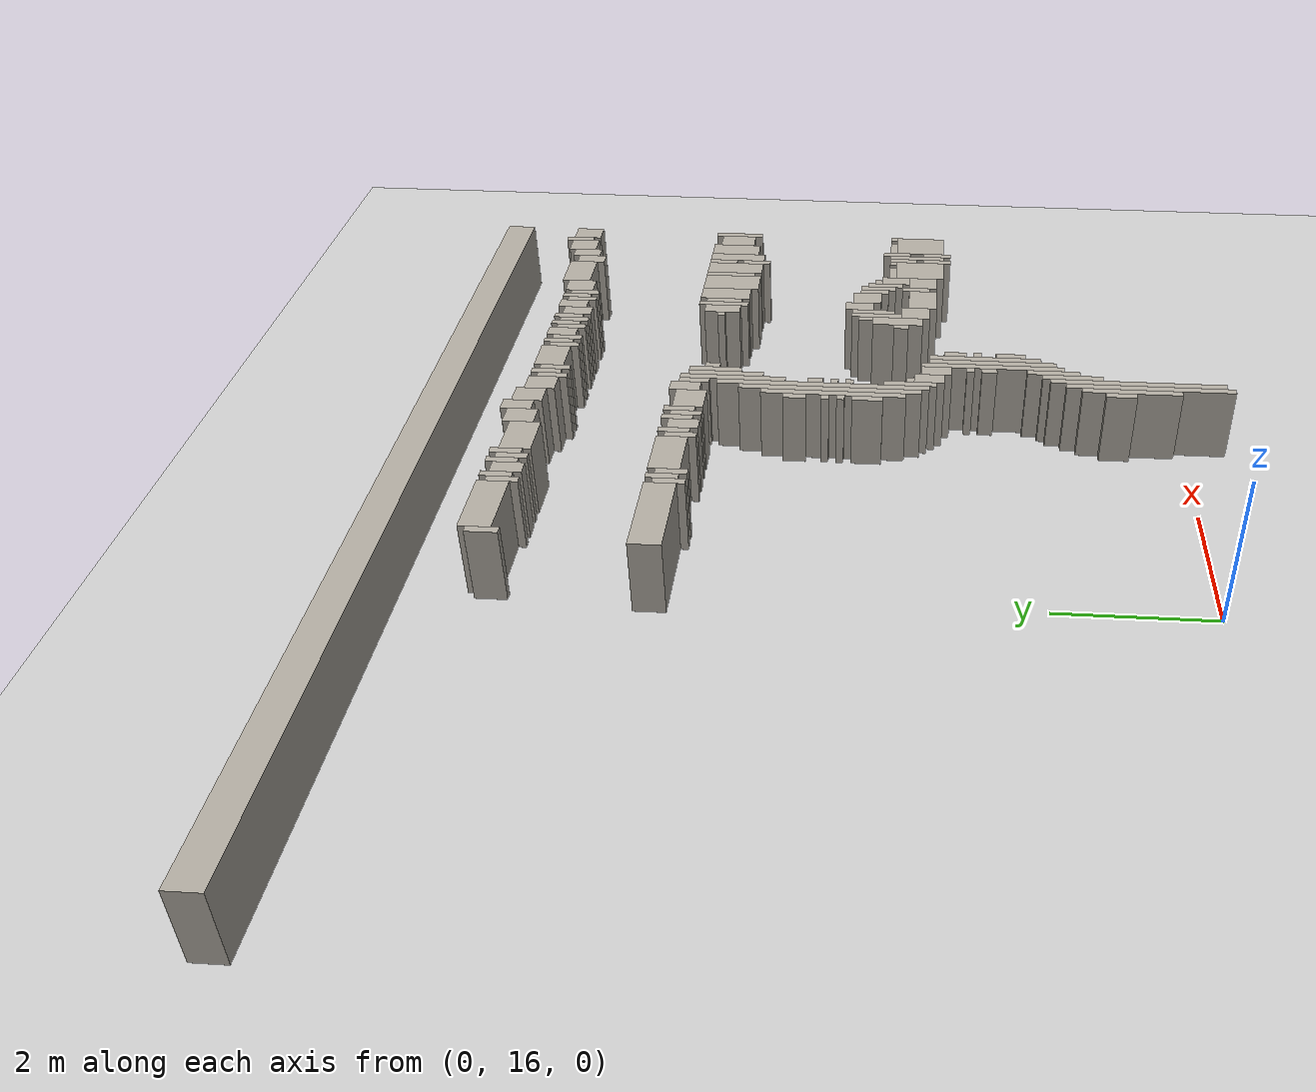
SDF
<sdf version="1.6">
 <world name="willow_office">
  <include><uri>model://sun</uri></include>
  <include><uri>model://ground_plane</uri></include>
  <model name="willow_office_walls">
   <static>true</static>
   <link name="w0951">
    <pose>3.465 16.562 0.500 0 0 0</pose>
    <collision name="c"><geometry><box><size>0.100 2.200 1.000</size></box></geometry></collision>
    <visual name="v">
     <geometry><box><size>0.100 2.200 1.000</size></box></geometry>
     <material><ambient>0.68 0.66 0.62 1</ambient><diffuse>0.68 0.66 0.62 1</diffuse></material>
    </visual>
   </link>
   <link name="w0954">
    <pose>3.565 16.712 0.500 0 0 0</pose>
    <collision name="c"><geometry><box><size>0.100 2.300 1.000</size></box></geometry></collision>
    <visual name="v">
     <geometry><box><size>0.100 2.300 1.000</size></box></geometry>
     <material><ambient>0.68 0.66 0.62 1</ambient><diffuse>0.68 0.66 0.62 1</diffuse></material>
    </visual>
   </link>
   <link name="w0980">
    <pose>3.365 16.812 0.500 0 0 0</pose>
    <collision name="c"><geometry><box><size>0.100 1.300 1.000</size></box></geometry></collision>
    <visual name="v">
     <geometry><box><size>0.100 1.300 1.000</size></box></geometry>
     <material><ambient>0.68 0.66 0.62 1</ambient><diffuse>0.68 0.66 0.62 1</diffuse></material>
    </visual>
   </link>
   <link name="w1000">
    <pose>3.265 16.962 0.500 0 0 0</pose>
    <collision name="c"><geometry><box><size>0.100 0.400 1.000</size></box></geometry></collision>
    <visual name="v">
     <geometry><box><size>0.100 0.400 1.000</size></box></geometry>
     <material><ambient>0.68 0.66 0.62 1</ambient><diffuse>0.68 0.66 0.62 1</diffuse></material>
    </visual>
   </link>
   <link name="w1009">
    <pose>3.665 17.562 0.500 0 0 0</pose>
    <collision name="c"><geometry><box><size>0.100 0.800 1.000</size></box></geometry></collision>
    <visual name="v">
     <geometry><box><size>0.100 0.800 1.000</size></box></geometry>
     <material><ambient>0.68 0.66 0.62 1</ambient><diffuse>0.68 0.66 0.62 1</diffuse></material>
    </visual>
   </link>
   <link name="w1016">
    <pose>3.765 17.812 0.500 0 0 0</pose>
    <collision name="c"><geometry><box><size>0.100 0.700 1.000</size></box></geometry></collision>
    <visual name="v">
     <geometry><box><size>0.100 0.700 1.000</size></box></geometry>
     <material><ambient>0.68 0.66 0.62 1</ambient><diffuse>0.68 0.66 0.62 1</diffuse></material>
    </visual>
   </link>
   <link name="w1022">
    <pose>3.865 18.612 0.500 0 0 0</pose>
    <collision name="c"><geometry><box><size>0.100 1.900 1.000</size></box></geometry></collision>
    <visual name="v">
     <geometry><box><size>0.100 1.900 1.000</size></box></geometry>
     <material><ambient>0.68 0.66 0.62 1</ambient><diffuse>0.68 0.66 0.62 1</diffuse></material>
    </visual>
   </link>
   <link name="w1027">
    <pose>3.965 18.612 0.500 0 0 0</pose>
    <collision name="c"><geometry><box><size>0.100 1.700 1.000</size></box></geometry></collision>
    <visual name="v">
     <geometry><box><size>0.100 1.700 1.000</size></box></geometry>
     <material><ambient>0.68 0.66 0.62 1</ambient><diffuse>0.68 0.66 0.62 1</diffuse></material>
    </visual>
   </link>
   <link name="w1031">
    <pose>4.065 18.712 0.500 0 0 0</pose>
    <collision name="c"><geometry><box><size>0.100 1.500 1.000</size></box></geometry></collision>
    <visual name="v">
     <geometry><box><size>0.100 1.500 1.000</size></box></geometry>
     <material><ambient>0.68 0.66 0.62 1</ambient><diffuse>0.68 0.66 0.62 1</diffuse></material>
    </visual>
   </link>
   <link name="w1040">
    <pose>4.165 18.362 0.500 0 0 0</pose>
    <collision name="c"><geometry><box><size>0.100 0.400 1.000</size></box></geometry></collision>
    <visual name="v">
     <geometry><box><size>0.100 0.400 1.000</size></box></geometry>
     <material><ambient>0.68 0.66 0.62 1</ambient><diffuse>0.68 0.66 0.62 1</diffuse></material>
    </visual>
   </link>
   <link name="w1060">
    <pose>3.765 18.662 0.500 0 0 0</pose>
    <collision name="c"><geometry><box><size>0.100 0.200 1.000</size></box></geometry></collision>
    <visual name="v">
     <geometry><box><size>0.100 0.200 1.000</size></box></geometry>
     <material><ambient>0.68 0.66 0.62 1</ambient><diffuse>0.68 0.66 0.62 1</diffuse></material>
    </visual>
   </link>
   <link name="w1071">
    <pose>4.165 18.812 0.500 0 0 0</pose>
    <collision name="c"><geometry><box><size>0.100 0.100 1.000</size></box></geometry></collision>
    <visual name="v">
     <geometry><box><size>0.100 0.100 1.000</size></box></geometry>
     <material><ambient>0.68 0.66 0.62 1</ambient><diffuse>0.68 0.66 0.62 1</diffuse></material>
    </visual>
   </link>
   <link name="w1076">
    <pose>3.765 18.912 0.500 0 0 0</pose>
    <collision name="c"><geometry><box><size>0.100 0.100 1.000</size></box></geometry></collision>
    <visual name="v">
     <geometry><box><size>0.100 0.100 1.000</size></box></geometry>
     <material><ambient>0.68 0.66 0.62 1</ambient><diffuse>0.68 0.66 0.62 1</diffuse></material>
    </visual>
   </link>
   <link name="w1083">
    <pose>4.165 19.112 0.500 0 0 0</pose>
    <collision name="c"><geometry><box><size>0.100 0.300 1.000</size></box></geometry></collision>
    <visual name="v">
     <geometry><box><size>0.100 0.300 1.000</size></box></geometry>
     <material><ambient>0.68 0.66 0.62 1</ambient><diffuse>0.68 0.66 0.62 1</diffuse></material>
    </visual>
   </link>
   <link name="w1092">
    <pose>3.715 19.362 0.500 0 0 0</pose>
    <collision name="c"><geometry><box><size>0.200 0.400 1.000</size></box></geometry></collision>
    <visual name="v">
     <geometry><box><size>0.200 0.400 1.000</size></box></geometry>
     <material><ambient>0.68 0.66 0.62 1</ambient><diffuse>0.68 0.66 0.62 1</diffuse></material>
    </visual>
   </link>
   <link name="w1093">
    <pose>6.865 19.362 0.500 0 0 0</pose>
    <collision name="c"><geometry><box><size>0.100 0.400 1.000</size></box></geometry></collision>
    <visual name="v">
     <geometry><box><size>0.100 0.400 1.000</size></box></geometry>
     <material><ambient>0.68 0.66 0.62 1</ambient><diffuse>0.68 0.66 0.62 1</diffuse></material>
    </visual>
   </link>
   <link name="w1094">
    <pose>7.065 19.362 0.500 0 0 0</pose>
    <collision name="c"><geometry><box><size>0.100 0.400 1.000</size></box></geometry></collision>
    <visual name="v">
     <geometry><box><size>0.100 0.400 1.000</size></box></geometry>
     <material><ambient>0.68 0.66 0.62 1</ambient><diffuse>0.68 0.66 0.62 1</diffuse></material>
    </visual>
   </link>
   <link name="w1099">
    <pose>3.515 19.462 0.500 0 0 0</pose>
    <collision name="c"><geometry><box><size>0.200 0.400 1.000</size></box></geometry></collision>
    <visual name="v">
     <geometry><box><size>0.200 0.400 1.000</size></box></geometry>
     <material><ambient>0.68 0.66 0.62 1</ambient><diffuse>0.68 0.66 0.62 1</diffuse></material>
    </visual>
   </link>
   <link name="w1100">
    <pose>6.565 19.612 0.500 0 0 0</pose>
    <collision name="c"><geometry><box><size>0.500 0.700 1.000</size></box></geometry></collision>
    <visual name="v">
     <geometry><box><size>0.500 0.700 1.000</size></box></geometry>
     <material><ambient>0.68 0.66 0.62 1</ambient><diffuse>0.68 0.66 0.62 1</diffuse></material>
    </visual>
   </link>
   <link name="w1101">
    <pose>6.965 19.662 0.500 0 0 0</pose>
    <collision name="c"><geometry><box><size>0.100 0.800 1.000</size></box></geometry></collision>
    <visual name="v">
     <geometry><box><size>0.100 0.800 1.000</size></box></geometry>
     <material><ambient>0.68 0.66 0.62 1</ambient><diffuse>0.68 0.66 0.62 1</diffuse></material>
    </visual>
   </link>
   <link name="w1102">
    <pose>7.365 19.612 0.500 0 0 0</pose>
    <collision name="c"><geometry><box><size>0.500 0.700 1.000</size></box></geometry></collision>
    <visual name="v">
     <geometry><box><size>0.500 0.700 1.000</size></box></geometry>
     <material><ambient>0.68 0.66 0.62 1</ambient><diffuse>0.68 0.66 0.62 1</diffuse></material>
    </visual>
   </link>
   <link name="w1103">
    <pose>3.365 19.712 0.500 0 0 0</pose>
    <collision name="c"><geometry><box><size>0.100 0.700 1.000</size></box></geometry></collision>
    <visual name="v">
     <geometry><box><size>0.100 0.700 1.000</size></box></geometry>
     <material><ambient>0.68 0.66 0.62 1</ambient><diffuse>0.68 0.66 0.62 1</diffuse></material>
    </visual>
   </link>
   <link name="w1104">
    <pose>5.665 19.562 0.500 0 0 0</pose>
    <collision name="c"><geometry><box><size>0.500 0.400 1.000</size></box></geometry></collision>
    <visual name="v">
     <geometry><box><size>0.500 0.400 1.000</size></box></geometry>
     <material><ambient>0.68 0.66 0.62 1</ambient><diffuse>0.68 0.66 0.62 1</diffuse></material>
    </visual>
   </link>
   <link name="w1105">
    <pose>6.165 19.562 0.500 0 0 0</pose>
    <collision name="c"><geometry><box><size>0.300 0.400 1.000</size></box></geometry></collision>
    <visual name="v">
     <geometry><box><size>0.300 0.400 1.000</size></box></geometry>
     <material><ambient>0.68 0.66 0.62 1</ambient><diffuse>0.68 0.66 0.62 1</diffuse></material>
    </visual>
   </link>
   <link name="w1107">
    <pose>3.265 20.862 0.500 0 0 0</pose>
    <collision name="c"><geometry><box><size>0.100 2.800 1.000</size></box></geometry></collision>
    <visual name="v">
     <geometry><box><size>0.100 2.800 1.000</size></box></geometry>
     <material><ambient>0.68 0.66 0.62 1</ambient><diffuse>0.68 0.66 0.62 1</diffuse></material>
    </visual>
   </link>
   <link name="w1108">
    <pose>5.265 19.662 0.500 0 0 0</pose>
    <collision name="c"><geometry><box><size>0.300 0.400 1.000</size></box></geometry></collision>
    <visual name="v">
     <geometry><box><size>0.300 0.400 1.000</size></box></geometry>
     <material><ambient>0.68 0.66 0.62 1</ambient><diffuse>0.68 0.66 0.62 1</diffuse></material>
    </visual>
   </link>
   <link name="w1109">
    <pose>5.965 19.662 0.500 0 0 0</pose>
    <collision name="c"><geometry><box><size>0.100 0.400 1.000</size></box></geometry></collision>
    <visual name="v">
     <geometry><box><size>0.100 0.400 1.000</size></box></geometry>
     <material><ambient>0.68 0.66 0.62 1</ambient><diffuse>0.68 0.66 0.62 1</diffuse></material>
    </visual>
   </link>
   <link name="w1110">
    <pose>3.165 20.762 0.500 0 0 0</pose>
    <collision name="c"><geometry><box><size>0.100 2.400 1.000</size></box></geometry></collision>
    <visual name="v">
     <geometry><box><size>0.100 2.400 1.000</size></box></geometry>
     <material><ambient>0.68 0.66 0.62 1</ambient><diffuse>0.68 0.66 0.62 1</diffuse></material>
    </visual>
   </link>
   <link name="w1111">
    <pose>5.015 19.912 0.500 0 0 0</pose>
    <collision name="c"><geometry><box><size>0.200 0.700 1.000</size></box></geometry></collision>
    <visual name="v">
     <geometry><box><size>0.200 0.700 1.000</size></box></geometry>
     <material><ambient>0.68 0.66 0.62 1</ambient><diffuse>0.68 0.66 0.62 1</diffuse></material>
    </visual>
   </link>
   <link name="w1112">
    <pose>3.465 19.712 0.500 0 0 0</pose>
    <collision name="c"><geometry><box><size>0.100 0.100 1.000</size></box></geometry></collision>
    <visual name="v">
     <geometry><box><size>0.100 0.100 1.000</size></box></geometry>
     <material><ambient>0.68 0.66 0.62 1</ambient><diffuse>0.68 0.66 0.62 1</diffuse></material>
    </visual>
   </link>
   <link name="w1113">
    <pose>6.865 19.862 0.500 0 0 0</pose>
    <collision name="c"><geometry><box><size>0.100 0.400 1.000</size></box></geometry></collision>
    <visual name="v">
     <geometry><box><size>0.100 0.400 1.000</size></box></geometry>
     <material><ambient>0.68 0.66 0.62 1</ambient><diffuse>0.68 0.66 0.62 1</diffuse></material>
    </visual>
   </link>
   <link name="w1115">
    <pose>3.065 20.712 0.500 0 0 0</pose>
    <collision name="c"><geometry><box><size>0.100 1.900 1.000</size></box></geometry></collision>
    <visual name="v">
     <geometry><box><size>0.100 1.900 1.000</size></box></geometry>
     <material><ambient>0.68 0.66 0.62 1</ambient><diffuse>0.68 0.66 0.62 1</diffuse></material>
    </visual>
   </link>
   <link name="w1116">
    <pose>4.865 19.862 0.500 0 0 0</pose>
    <collision name="c"><geometry><box><size>0.100 0.200 1.000</size></box></geometry></collision>
    <visual name="v">
     <geometry><box><size>0.100 0.200 1.000</size></box></geometry>
     <material><ambient>0.68 0.66 0.62 1</ambient><diffuse>0.68 0.66 0.62 1</diffuse></material>
    </visual>
   </link>
   <link name="w1117">
    <pose>6.215 19.962 0.500 0 0 0</pose>
    <collision name="c"><geometry><box><size>0.200 0.400 1.000</size></box></geometry></collision>
    <visual name="v">
     <geometry><box><size>0.200 0.400 1.000</size></box></geometry>
     <material><ambient>0.68 0.66 0.62 1</ambient><diffuse>0.68 0.66 0.62 1</diffuse></material>
    </visual>
   </link>
   <link name="w1118">
    <pose>7.065 19.962 0.500 0 0 0</pose>
    <collision name="c"><geometry><box><size>0.100 0.400 1.000</size></box></geometry></collision>
    <visual name="v">
     <geometry><box><size>0.100 0.400 1.000</size></box></geometry>
     <material><ambient>0.68 0.66 0.62 1</ambient><diffuse>0.68 0.66 0.62 1</diffuse></material>
    </visual>
   </link>
   <link name="w1119">
    <pose>5.165 20.212 0.500 0 0 0</pose>
    <collision name="c"><geometry><box><size>0.100 0.700 1.000</size></box></geometry></collision>
    <visual name="v">
     <geometry><box><size>0.100 0.700 1.000</size></box></geometry>
     <material><ambient>0.68 0.66 0.62 1</ambient><diffuse>0.68 0.66 0.62 1</diffuse></material>
    </visual>
   </link>
   <link name="w1120">
    <pose>6.065 20.112 0.500 0 0 0</pose>
    <collision name="c"><geometry><box><size>0.100 0.500 1.000</size></box></geometry></collision>
    <visual name="v">
     <geometry><box><size>0.100 0.500 1.000</size></box></geometry>
     <material><ambient>0.68 0.66 0.62 1</ambient><diffuse>0.68 0.66 0.62 1</diffuse></material>
    </visual>
   </link>
   <link name="w1122">
    <pose>5.265 20.262 0.500 0 0 0</pose>
    <collision name="c"><geometry><box><size>0.100 0.600 1.000</size></box></geometry></collision>
    <visual name="v">
     <geometry><box><size>0.100 0.600 1.000</size></box></geometry>
     <material><ambient>0.68 0.66 0.62 1</ambient><diffuse>0.68 0.66 0.62 1</diffuse></material>
    </visual>
   </link>
   <link name="w1123">
    <pose>5.965 20.212 0.500 0 0 0</pose>
    <collision name="c"><geometry><box><size>0.100 0.500 1.000</size></box></geometry></collision>
    <visual name="v">
     <geometry><box><size>0.100 0.500 1.000</size></box></geometry>
     <material><ambient>0.68 0.66 0.62 1</ambient><diffuse>0.68 0.66 0.62 1</diffuse></material>
    </visual>
   </link>
   <link name="w1124">
    <pose>6.465 20.012 0.500 0 0 0</pose>
    <collision name="c"><geometry><box><size>0.300 0.100 1.000</size></box></geometry></collision>
    <visual name="v">
     <geometry><box><size>0.300 0.100 1.000</size></box></geometry>
     <material><ambient>0.68 0.66 0.62 1</ambient><diffuse>0.68 0.66 0.62 1</diffuse></material>
    </visual>
   </link>
   <link name="w1125">
    <pose>6.765 20.012 0.500 0 0 0</pose>
    <collision name="c"><geometry><box><size>0.100 0.100 1.000</size></box></geometry></collision>
    <visual name="v">
     <geometry><box><size>0.100 0.100 1.000</size></box></geometry>
     <material><ambient>0.68 0.66 0.62 1</ambient><diffuse>0.68 0.66 0.62 1</diffuse></material>
    </visual>
   </link>
   <link name="w1126">
    <pose>7.265 20.012 0.500 0 0 0</pose>
    <collision name="c"><geometry><box><size>0.300 0.100 1.000</size></box></geometry></collision>
    <visual name="v">
     <geometry><box><size>0.300 0.100 1.000</size></box></geometry>
     <material><ambient>0.68 0.66 0.62 1</ambient><diffuse>0.68 0.66 0.62 1</diffuse></material>
    </visual>
   </link>
   <link name="w1127">
    <pose>7.565 20.012 0.500 0 0 0</pose>
    <collision name="c"><geometry><box><size>0.100 0.100 1.000</size></box></geometry></collision>
    <visual name="v">
     <geometry><box><size>0.100 0.100 1.000</size></box></geometry>
     <material><ambient>0.68 0.66 0.62 1</ambient><diffuse>0.68 0.66 0.62 1</diffuse></material>
    </visual>
   </link>
   <link name="w1129">
    <pose>2.965 20.262 0.500 0 0 0</pose>
    <collision name="c"><geometry><box><size>0.100 0.400 1.000</size></box></geometry></collision>
    <visual name="v">
     <geometry><box><size>0.100 0.400 1.000</size></box></geometry>
     <material><ambient>0.68 0.66 0.62 1</ambient><diffuse>0.68 0.66 0.62 1</diffuse></material>
    </visual>
   </link>
   <link name="w1130">
    <pose>5.865 20.262 0.500 0 0 0</pose>
    <collision name="c"><geometry><box><size>0.100 0.400 1.000</size></box></geometry></collision>
    <visual name="v">
     <geometry><box><size>0.100 0.400 1.000</size></box></geometry>
     <material><ambient>0.68 0.66 0.62 1</ambient><diffuse>0.68 0.66 0.62 1</diffuse></material>
    </visual>
   </link>
   <link name="w1132">
    <pose>5.665 20.362 0.500 0 0 0</pose>
    <collision name="c"><geometry><box><size>0.300 0.400 1.000</size></box></geometry></collision>
    <visual name="v">
     <geometry><box><size>0.300 0.400 1.000</size></box></geometry>
     <material><ambient>0.68 0.66 0.62 1</ambient><diffuse>0.68 0.66 0.62 1</diffuse></material>
    </visual>
   </link>
   <link name="w1133">
    <pose>6.165 20.212 0.500 0 0 0</pose>
    <collision name="c"><geometry><box><size>0.100 0.100 1.000</size></box></geometry></collision>
    <visual name="v">
     <geometry><box><size>0.100 0.100 1.000</size></box></geometry>
     <material><ambient>0.68 0.66 0.62 1</ambient><diffuse>0.68 0.66 0.62 1</diffuse></material>
    </visual>
   </link>
   <link name="w1135">
    <pose>5.065 20.362 0.500 0 0 0</pose>
    <collision name="c"><geometry><box><size>0.100 0.200 1.000</size></box></geometry></collision>
    <visual name="v">
     <geometry><box><size>0.100 0.200 1.000</size></box></geometry>
     <material><ambient>0.68 0.66 0.62 1</ambient><diffuse>0.68 0.66 0.62 1</diffuse></material>
    </visual>
   </link>
   <link name="w1136">
    <pose>5.415 20.462 0.500 0 0 0</pose>
    <collision name="c"><geometry><box><size>0.200 0.400 1.000</size></box></geometry></collision>
    <visual name="v">
     <geometry><box><size>0.200 0.400 1.000</size></box></geometry>
     <material><ambient>0.68 0.66 0.62 1</ambient><diffuse>0.68 0.66 0.62 1</diffuse></material>
    </visual>
   </link>
   <link name="w1139">
    <pose>3.365 20.512 0.500 0 0 0</pose>
    <collision name="c"><geometry><box><size>0.100 0.100 1.000</size></box></geometry></collision>
    <visual name="v">
     <geometry><box><size>0.100 0.100 1.000</size></box></geometry>
     <material><ambient>0.68 0.66 0.62 1</ambient><diffuse>0.68 0.66 0.62 1</diffuse></material>
    </visual>
   </link>
   <link name="w1141">
    <pose>2.965 20.612 0.500 0 0 0</pose>
    <collision name="c"><geometry><box><size>0.100 0.100 1.000</size></box></geometry></collision>
    <visual name="v">
     <geometry><box><size>0.100 0.100 1.000</size></box></geometry>
     <material><ambient>0.68 0.66 0.62 1</ambient><diffuse>0.68 0.66 0.62 1</diffuse></material>
    </visual>
   </link>
   <link name="w1143">
    <pose>3.365 20.712 0.500 0 0 0</pose>
    <collision name="c"><geometry><box><size>0.100 0.100 1.000</size></box></geometry></collision>
    <visual name="v">
     <geometry><box><size>0.100 0.100 1.000</size></box></geometry>
     <material><ambient>0.68 0.66 0.62 1</ambient><diffuse>0.68 0.66 0.62 1</diffuse></material>
    </visual>
   </link>
   <link name="w1145">
    <pose>2.965 20.812 0.500 0 0 0</pose>
    <collision name="c"><geometry><box><size>0.100 0.100 1.000</size></box></geometry></collision>
    <visual name="v">
     <geometry><box><size>0.100 0.100 1.000</size></box></geometry>
     <material><ambient>0.68 0.66 0.62 1</ambient><diffuse>0.68 0.66 0.62 1</diffuse></material>
    </visual>
   </link>
   <link name="w1147">
    <pose>3.365 20.962 0.500 0 0 0</pose>
    <collision name="c"><geometry><box><size>0.100 0.200 1.000</size></box></geometry></collision>
    <visual name="v">
     <geometry><box><size>0.100 0.200 1.000</size></box></geometry>
     <material><ambient>0.68 0.66 0.62 1</ambient><diffuse>0.68 0.66 0.62 1</diffuse></material>
    </visual>
   </link>
   <link name="w1151">
    <pose>2.965 21.212 0.500 0 0 0</pose>
    <collision name="c"><geometry><box><size>0.100 0.300 1.000</size></box></geometry></collision>
    <visual name="v">
     <geometry><box><size>0.100 0.300 1.000</size></box></geometry>
     <material><ambient>0.68 0.66 0.62 1</ambient><diffuse>0.68 0.66 0.62 1</diffuse></material>
    </visual>
   </link>
   <link name="w1167">
    <pose>3.365 22.062 0.500 0 0 0</pose>
    <collision name="c"><geometry><box><size>0.100 1.400 1.000</size></box></geometry></collision>
    <visual name="v">
     <geometry><box><size>0.100 1.400 1.000</size></box></geometry>
     <material><ambient>0.68 0.66 0.62 1</ambient><diffuse>0.68 0.66 0.62 1</diffuse></material>
    </visual>
   </link>
   <link name="w1179">
    <pose>3.465 22.162 0.500 0 0 0</pose>
    <collision name="c"><geometry><box><size>0.100 1.000 1.000</size></box></geometry></collision>
    <visual name="v">
     <geometry><box><size>0.100 1.000 1.000</size></box></geometry>
     <material><ambient>0.68 0.66 0.62 1</ambient><diffuse>0.68 0.66 0.62 1</diffuse></material>
    </visual>
   </link>
   <link name="w1190">
    <pose>6.665 22.062 0.500 0 0 0</pose>
    <collision name="c"><geometry><box><size>0.100 0.400 1.000</size></box></geometry></collision>
    <visual name="v">
     <geometry><box><size>0.100 0.400 1.000</size></box></geometry>
     <material><ambient>0.68 0.66 0.62 1</ambient><diffuse>0.68 0.66 0.62 1</diffuse></material>
    </visual>
   </link>
   <link name="w1193">
    <pose>3.565 22.312 0.500 0 0 0</pose>
    <collision name="c"><geometry><box><size>0.100 0.700 1.000</size></box></geometry></collision>
    <visual name="v">
     <geometry><box><size>0.100 0.700 1.000</size></box></geometry>
     <material><ambient>0.68 0.66 0.62 1</ambient><diffuse>0.68 0.66 0.62 1</diffuse></material>
    </visual>
   </link>
   <link name="w1194">
    <pose>6.015 22.362 0.500 0 0 0</pose>
    <collision name="c"><geometry><box><size>0.400 0.800 1.000</size></box></geometry></collision>
    <visual name="v">
     <geometry><box><size>0.400 0.800 1.000</size></box></geometry>
     <material><ambient>0.68 0.66 0.62 1</ambient><diffuse>0.68 0.66 0.62 1</diffuse></material>
    </visual>
   </link>
   <link name="w1195">
    <pose>6.465 22.362 0.500 0 0 0</pose>
    <collision name="c"><geometry><box><size>0.300 0.800 1.000</size></box></geometry></collision>
    <visual name="v">
     <geometry><box><size>0.300 0.800 1.000</size></box></geometry>
     <material><ambient>0.68 0.66 0.62 1</ambient><diffuse>0.68 0.66 0.62 1</diffuse></material>
    </visual>
   </link>
   <link name="w1196">
    <pose>6.815 22.362 0.500 0 0 0</pose>
    <collision name="c"><geometry><box><size>0.200 0.800 1.000</size></box></geometry></collision>
    <visual name="v">
     <geometry><box><size>0.200 0.800 1.000</size></box></geometry>
     <material><ambient>0.68 0.66 0.62 1</ambient><diffuse>0.68 0.66 0.62 1</diffuse></material>
    </visual>
   </link>
   <link name="w1200">
    <pose>5.365 22.412 0.500 0 0 0</pose>
    <collision name="c"><geometry><box><size>0.100 0.700 1.000</size></box></geometry></collision>
    <visual name="v">
     <geometry><box><size>0.100 0.700 1.000</size></box></geometry>
     <material><ambient>0.68 0.66 0.62 1</ambient><diffuse>0.68 0.66 0.62 1</diffuse></material>
    </visual>
   </link>
   <link name="w1201">
    <pose>5.665 22.412 0.500 0 0 0</pose>
    <collision name="c"><geometry><box><size>0.300 0.700 1.000</size></box></geometry></collision>
    <visual name="v">
     <geometry><box><size>0.300 0.700 1.000</size></box></geometry>
     <material><ambient>0.68 0.66 0.62 1</ambient><diffuse>0.68 0.66 0.62 1</diffuse></material>
    </visual>
   </link>
   <link name="w1202">
    <pose>6.265 22.412 0.500 0 0 0</pose>
    <collision name="c"><geometry><box><size>0.100 0.700 1.000</size></box></geometry></collision>
    <visual name="v">
     <geometry><box><size>0.100 0.700 1.000</size></box></geometry>
     <material><ambient>0.68 0.66 0.62 1</ambient><diffuse>0.68 0.66 0.62 1</diffuse></material>
    </visual>
   </link>
   <link name="w1203">
    <pose>7.065 22.412 0.500 0 0 0</pose>
    <collision name="c"><geometry><box><size>0.300 0.700 1.000</size></box></geometry></collision>
    <visual name="v">
     <geometry><box><size>0.300 0.700 1.000</size></box></geometry>
     <material><ambient>0.68 0.66 0.62 1</ambient><diffuse>0.68 0.66 0.62 1</diffuse></material>
    </visual>
   </link>
   <link name="w1204">
    <pose>7.565 22.412 0.500 0 0 0</pose>
    <collision name="c"><geometry><box><size>0.100 0.700 1.000</size></box></geometry></collision>
    <visual name="v">
     <geometry><box><size>0.100 0.700 1.000</size></box></geometry>
     <material><ambient>0.68 0.66 0.62 1</ambient><diffuse>0.68 0.66 0.62 1</diffuse></material>
    </visual>
   </link>
   <link name="w1207">
    <pose>5.215 22.412 0.500 0 0 0</pose>
    <collision name="c"><geometry><box><size>0.200 0.500 1.000</size></box></geometry></collision>
    <visual name="v">
     <geometry><box><size>0.200 0.500 1.000</size></box></geometry>
     <material><ambient>0.68 0.66 0.62 1</ambient><diffuse>0.68 0.66 0.62 1</diffuse></material>
    </visual>
   </link>
   <link name="w1208">
    <pose>5.465 22.412 0.500 0 0 0</pose>
    <collision name="c"><geometry><box><size>0.100 0.500 1.000</size></box></geometry></collision>
    <visual name="v">
     <geometry><box><size>0.100 0.500 1.000</size></box></geometry>
     <material><ambient>0.68 0.66 0.62 1</ambient><diffuse>0.68 0.66 0.62 1</diffuse></material>
    </visual>
   </link>
   <link name="w1209">
    <pose>7.365 22.412 0.500 0 0 0</pose>
    <collision name="c"><geometry><box><size>0.300 0.500 1.000</size></box></geometry></collision>
    <visual name="v">
     <geometry><box><size>0.300 0.500 1.000</size></box></geometry>
     <material><ambient>0.68 0.66 0.62 1</ambient><diffuse>0.68 0.66 0.62 1</diffuse></material>
    </visual>
   </link>
   <link name="w1213">
    <pose>3.665 22.362 0.500 0 0 0</pose>
    <collision name="c"><geometry><box><size>0.100 0.200 1.000</size></box></geometry></collision>
    <visual name="v">
     <geometry><box><size>0.100 0.200 1.000</size></box></geometry>
     <material><ambient>0.68 0.66 0.62 1</ambient><diffuse>0.68 0.66 0.62 1</diffuse></material>
    </visual>
   </link>
   <link name="w1219">
    <pose>0.965 22.562 0.500 0 0 0</pose>
    <collision name="c"><geometry><box><size>0.100 0.400 1.000</size></box></geometry></collision>
    <visual name="v">
     <geometry><box><size>0.100 0.400 1.000</size></box></geometry>
     <material><ambient>0.68 0.66 0.62 1</ambient><diffuse>0.68 0.66 0.62 1</diffuse></material>
    </visual>
   </link>
   <link name="w1220">
    <pose>1.165 22.562 0.500 0 0 0</pose>
    <collision name="c"><geometry><box><size>0.100 0.400 1.000</size></box></geometry></collision>
    <visual name="v">
     <geometry><box><size>0.100 0.400 1.000</size></box></geometry>
     <material><ambient>0.68 0.66 0.62 1</ambient><diffuse>0.68 0.66 0.62 1</diffuse></material>
    </visual>
   </link>
   <link name="w1221">
    <pose>1.965 22.562 0.500 0 0 0</pose>
    <collision name="c"><geometry><box><size>0.100 0.400 1.000</size></box></geometry></collision>
    <visual name="v">
     <geometry><box><size>0.100 0.400 1.000</size></box></geometry>
     <material><ambient>0.68 0.66 0.62 1</ambient><diffuse>0.68 0.66 0.62 1</diffuse></material>
    </visual>
   </link>
   <link name="w1222">
    <pose>2.215 22.562 0.500 0 0 0</pose>
    <collision name="c"><geometry><box><size>0.200 0.400 1.000</size></box></geometry></collision>
    <visual name="v">
     <geometry><box><size>0.200 0.400 1.000</size></box></geometry>
     <material><ambient>0.68 0.66 0.62 1</ambient><diffuse>0.68 0.66 0.62 1</diffuse></material>
    </visual>
   </link>
   <link name="w1223">
    <pose>2.465 22.562 0.500 0 0 0</pose>
    <collision name="c"><geometry><box><size>0.100 0.400 1.000</size></box></geometry></collision>
    <visual name="v">
     <geometry><box><size>0.100 0.400 1.000</size></box></geometry>
     <material><ambient>0.68 0.66 0.62 1</ambient><diffuse>0.68 0.66 0.62 1</diffuse></material>
    </visual>
   </link>
   <link name="w1224">
    <pose>2.815 22.562 0.500 0 0 0</pose>
    <collision name="c"><geometry><box><size>0.400 0.400 1.000</size></box></geometry></collision>
    <visual name="v">
     <geometry><box><size>0.400 0.400 1.000</size></box></geometry>
     <material><ambient>0.68 0.66 0.62 1</ambient><diffuse>0.68 0.66 0.62 1</diffuse></material>
    </visual>
   </link>
   <link name="w1225">
    <pose>3.265 22.562 0.500 0 0 0</pose>
    <collision name="c"><geometry><box><size>0.100 0.400 1.000</size></box></geometry></collision>
    <visual name="v">
     <geometry><box><size>0.100 0.400 1.000</size></box></geometry>
     <material><ambient>0.68 0.66 0.62 1</ambient><diffuse>0.68 0.66 0.62 1</diffuse></material>
    </visual>
   </link>
   <link name="w1226">
    <pose>5.065 22.412 0.500 0 0 0</pose>
    <collision name="c"><geometry><box><size>0.100 0.100 1.000</size></box></geometry></collision>
    <visual name="v">
     <geometry><box><size>0.100 0.100 1.000</size></box></geometry>
     <material><ambient>0.68 0.66 0.62 1</ambient><diffuse>0.68 0.66 0.62 1</diffuse></material>
    </visual>
   </link>
   <link name="w1227">
    <pose>6.665 22.562 0.500 0 0 0</pose>
    <collision name="c"><geometry><box><size>0.100 0.400 1.000</size></box></geometry></collision>
    <visual name="v">
     <geometry><box><size>0.100 0.400 1.000</size></box></geometry>
     <material><ambient>0.68 0.66 0.62 1</ambient><diffuse>0.68 0.66 0.62 1</diffuse></material>
    </visual>
   </link>
   <link name="w1241">
    <pose>0.315 22.662 0.500 0 0 0</pose>
    <collision name="c"><geometry><box><size>1.200 0.400 1.000</size></box></geometry></collision>
    <visual name="v">
     <geometry><box><size>1.200 0.400 1.000</size></box></geometry>
     <material><ambient>0.68 0.66 0.62 1</ambient><diffuse>0.68 0.66 0.62 1</diffuse></material>
    </visual>
   </link>
   <link name="w1242">
    <pose>1.065 22.662 0.500 0 0 0</pose>
    <collision name="c"><geometry><box><size>0.100 0.400 1.000</size></box></geometry></collision>
    <visual name="v">
     <geometry><box><size>0.100 0.400 1.000</size></box></geometry>
     <material><ambient>0.68 0.66 0.62 1</ambient><diffuse>0.68 0.66 0.62 1</diffuse></material>
    </visual>
   </link>
   <link name="w1243">
    <pose>1.565 22.662 0.500 0 0 0</pose>
    <collision name="c"><geometry><box><size>0.700 0.400 1.000</size></box></geometry></collision>
    <visual name="v">
     <geometry><box><size>0.700 0.400 1.000</size></box></geometry>
     <material><ambient>0.68 0.66 0.62 1</ambient><diffuse>0.68 0.66 0.62 1</diffuse></material>
    </visual>
   </link>
   <link name="w1244">
    <pose>2.065 22.662 0.500 0 0 0</pose>
    <collision name="c"><geometry><box><size>0.100 0.400 1.000</size></box></geometry></collision>
    <visual name="v">
     <geometry><box><size>0.100 0.400 1.000</size></box></geometry>
     <material><ambient>0.68 0.66 0.62 1</ambient><diffuse>0.68 0.66 0.62 1</diffuse></material>
    </visual>
   </link>
   <link name="w1245">
    <pose>2.365 22.662 0.500 0 0 0</pose>
    <collision name="c"><geometry><box><size>0.100 0.400 1.000</size></box></geometry></collision>
    <visual name="v">
     <geometry><box><size>0.100 0.400 1.000</size></box></geometry>
     <material><ambient>0.68 0.66 0.62 1</ambient><diffuse>0.68 0.66 0.62 1</diffuse></material>
    </visual>
   </link>
   <link name="w1246">
    <pose>2.565 22.662 0.500 0 0 0</pose>
    <collision name="c"><geometry><box><size>0.100 0.400 1.000</size></box></geometry></collision>
    <visual name="v">
     <geometry><box><size>0.100 0.400 1.000</size></box></geometry>
     <material><ambient>0.68 0.66 0.62 1</ambient><diffuse>0.68 0.66 0.62 1</diffuse></material>
    </visual>
   </link>
   <link name="w1247">
    <pose>3.115 22.662 0.500 0 0 0</pose>
    <collision name="c"><geometry><box><size>0.200 0.400 1.000</size></box></geometry></collision>
    <visual name="v">
     <geometry><box><size>0.200 0.400 1.000</size></box></geometry>
     <material><ambient>0.68 0.66 0.62 1</ambient><diffuse>0.68 0.66 0.62 1</diffuse></material>
    </visual>
   </link>
   <link name="w1293">
    <pose>3.265 24.462 0.500 0 0 0</pose>
    <collision name="c"><geometry><box><size>0.100 0.400 1.000</size></box></geometry></collision>
    <visual name="v">
     <geometry><box><size>0.100 0.400 1.000</size></box></geometry>
     <material><ambient>0.68 0.66 0.62 1</ambient><diffuse>0.68 0.66 0.62 1</diffuse></material>
    </visual>
   </link>
   <link name="w1294">
    <pose>3.465 24.462 0.500 0 0 0</pose>
    <collision name="c"><geometry><box><size>0.100 0.400 1.000</size></box></geometry></collision>
    <visual name="v">
     <geometry><box><size>0.100 0.400 1.000</size></box></geometry>
     <material><ambient>0.68 0.66 0.62 1</ambient><diffuse>0.68 0.66 0.62 1</diffuse></material>
    </visual>
   </link>
   <link name="w1295">
    <pose>4.065 24.462 0.500 0 0 0</pose>
    <collision name="c"><geometry><box><size>0.100 0.400 1.000</size></box></geometry></collision>
    <visual name="v">
     <geometry><box><size>0.100 0.400 1.000</size></box></geometry>
     <material><ambient>0.68 0.66 0.62 1</ambient><diffuse>0.68 0.66 0.62 1</diffuse></material>
    </visual>
   </link>
   <link name="w1296">
    <pose>4.265 24.462 0.500 0 0 0</pose>
    <collision name="c"><geometry><box><size>0.100 0.400 1.000</size></box></geometry></collision>
    <visual name="v">
     <geometry><box><size>0.100 0.400 1.000</size></box></geometry>
     <material><ambient>0.68 0.66 0.62 1</ambient><diffuse>0.68 0.66 0.62 1</diffuse></material>
    </visual>
   </link>
   <link name="w1297">
    <pose>4.565 24.462 0.500 0 0 0</pose>
    <collision name="c"><geometry><box><size>0.100 0.400 1.000</size></box></geometry></collision>
    <visual name="v">
     <geometry><box><size>0.100 0.400 1.000</size></box></geometry>
     <material><ambient>0.68 0.66 0.62 1</ambient><diffuse>0.68 0.66 0.62 1</diffuse></material>
    </visual>
   </link>
   <link name="w1298">
    <pose>4.765 24.462 0.500 0 0 0</pose>
    <collision name="c"><geometry><box><size>0.100 0.400 1.000</size></box></geometry></collision>
    <visual name="v">
     <geometry><box><size>0.100 0.400 1.000</size></box></geometry>
     <material><ambient>0.68 0.66 0.62 1</ambient><diffuse>0.68 0.66 0.62 1</diffuse></material>
    </visual>
   </link>
   <link name="w1299">
    <pose>5.015 24.462 0.500 0 0 0</pose>
    <collision name="c"><geometry><box><size>0.200 0.400 1.000</size></box></geometry></collision>
    <visual name="v">
     <geometry><box><size>0.200 0.400 1.000</size></box></geometry>
     <material><ambient>0.68 0.66 0.62 1</ambient><diffuse>0.68 0.66 0.62 1</diffuse></material>
    </visual>
   </link>
   <link name="w1300">
    <pose>5.365 24.462 0.500 0 0 0</pose>
    <collision name="c"><geometry><box><size>0.100 0.400 1.000</size></box></geometry></collision>
    <visual name="v">
     <geometry><box><size>0.100 0.400 1.000</size></box></geometry>
     <material><ambient>0.68 0.66 0.62 1</ambient><diffuse>0.68 0.66 0.62 1</diffuse></material>
    </visual>
   </link>
   <link name="w1301">
    <pose>5.565 24.462 0.500 0 0 0</pose>
    <collision name="c"><geometry><box><size>0.100 0.400 1.000</size></box></geometry></collision>
    <visual name="v">
     <geometry><box><size>0.100 0.400 1.000</size></box></geometry>
     <material><ambient>0.68 0.66 0.62 1</ambient><diffuse>0.68 0.66 0.62 1</diffuse></material>
    </visual>
   </link>
   <link name="w1307">
    <pose>-0.135 24.562 0.500 0 0 0</pose>
    <collision name="c"><geometry><box><size>0.100 0.400 1.000</size></box></geometry></collision>
    <visual name="v">
     <geometry><box><size>0.100 0.400 1.000</size></box></geometry>
     <material><ambient>0.68 0.66 0.62 1</ambient><diffuse>0.68 0.66 0.62 1</diffuse></material>
    </visual>
   </link>
   <link name="w1308">
    <pose>0.865 24.562 0.500 0 0 0</pose>
    <collision name="c"><geometry><box><size>0.100 0.400 1.000</size></box></geometry></collision>
    <visual name="v">
     <geometry><box><size>0.100 0.400 1.000</size></box></geometry>
     <material><ambient>0.68 0.66 0.62 1</ambient><diffuse>0.68 0.66 0.62 1</diffuse></material>
    </visual>
   </link>
   <link name="w1309">
    <pose>1.115 24.562 0.500 0 0 0</pose>
    <collision name="c"><geometry><box><size>0.200 0.400 1.000</size></box></geometry></collision>
    <visual name="v">
     <geometry><box><size>0.200 0.400 1.000</size></box></geometry>
     <material><ambient>0.68 0.66 0.62 1</ambient><diffuse>0.68 0.66 0.62 1</diffuse></material>
    </visual>
   </link>
   <link name="w1310">
    <pose>1.365 24.562 0.500 0 0 0</pose>
    <collision name="c"><geometry><box><size>0.100 0.400 1.000</size></box></geometry></collision>
    <visual name="v">
     <geometry><box><size>0.100 0.400 1.000</size></box></geometry>
     <material><ambient>0.68 0.66 0.62 1</ambient><diffuse>0.68 0.66 0.62 1</diffuse></material>
    </visual>
   </link>
   <link name="w1311">
    <pose>1.815 24.562 0.500 0 0 0</pose>
    <collision name="c"><geometry><box><size>0.600 0.400 1.000</size></box></geometry></collision>
    <visual name="v">
     <geometry><box><size>0.600 0.400 1.000</size></box></geometry>
     <material><ambient>0.68 0.66 0.62 1</ambient><diffuse>0.68 0.66 0.62 1</diffuse></material>
    </visual>
   </link>
   <link name="w1312">
    <pose>3.065 24.562 0.500 0 0 0</pose>
    <collision name="c"><geometry><box><size>0.300 0.400 1.000</size></box></geometry></collision>
    <visual name="v">
     <geometry><box><size>0.300 0.400 1.000</size></box></geometry>
     <material><ambient>0.68 0.66 0.62 1</ambient><diffuse>0.68 0.66 0.62 1</diffuse></material>
    </visual>
   </link>
   <link name="w1313">
    <pose>3.365 24.562 0.500 0 0 0</pose>
    <collision name="c"><geometry><box><size>0.100 0.400 1.000</size></box></geometry></collision>
    <visual name="v">
     <geometry><box><size>0.100 0.400 1.000</size></box></geometry>
     <material><ambient>0.68 0.66 0.62 1</ambient><diffuse>0.68 0.66 0.62 1</diffuse></material>
    </visual>
   </link>
   <link name="w1314">
    <pose>3.765 24.562 0.500 0 0 0</pose>
    <collision name="c"><geometry><box><size>0.500 0.400 1.000</size></box></geometry></collision>
    <visual name="v">
     <geometry><box><size>0.500 0.400 1.000</size></box></geometry>
     <material><ambient>0.68 0.66 0.62 1</ambient><diffuse>0.68 0.66 0.62 1</diffuse></material>
    </visual>
   </link>
   <link name="w1315">
    <pose>4.165 24.562 0.500 0 0 0</pose>
    <collision name="c"><geometry><box><size>0.100 0.400 1.000</size></box></geometry></collision>
    <visual name="v">
     <geometry><box><size>0.100 0.400 1.000</size></box></geometry>
     <material><ambient>0.68 0.66 0.62 1</ambient><diffuse>0.68 0.66 0.62 1</diffuse></material>
    </visual>
   </link>
   <link name="w1316">
    <pose>4.415 24.562 0.500 0 0 0</pose>
    <collision name="c"><geometry><box><size>0.200 0.400 1.000</size></box></geometry></collision>
    <visual name="v">
     <geometry><box><size>0.200 0.400 1.000</size></box></geometry>
     <material><ambient>0.68 0.66 0.62 1</ambient><diffuse>0.68 0.66 0.62 1</diffuse></material>
    </visual>
   </link>
   <link name="w1317">
    <pose>4.665 24.562 0.500 0 0 0</pose>
    <collision name="c"><geometry><box><size>0.100 0.400 1.000</size></box></geometry></collision>
    <visual name="v">
     <geometry><box><size>0.100 0.400 1.000</size></box></geometry>
     <material><ambient>0.68 0.66 0.62 1</ambient><diffuse>0.68 0.66 0.62 1</diffuse></material>
    </visual>
   </link>
   <link name="w1318">
    <pose>4.865 24.562 0.500 0 0 0</pose>
    <collision name="c"><geometry><box><size>0.100 0.400 1.000</size></box></geometry></collision>
    <visual name="v">
     <geometry><box><size>0.100 0.400 1.000</size></box></geometry>
     <material><ambient>0.68 0.66 0.62 1</ambient><diffuse>0.68 0.66 0.62 1</diffuse></material>
    </visual>
   </link>
   <link name="w1319">
    <pose>5.215 24.562 0.500 0 0 0</pose>
    <collision name="c"><geometry><box><size>0.200 0.400 1.000</size></box></geometry></collision>
    <visual name="v">
     <geometry><box><size>0.200 0.400 1.000</size></box></geometry>
     <material><ambient>0.68 0.66 0.62 1</ambient><diffuse>0.68 0.66 0.62 1</diffuse></material>
    </visual>
   </link>
   <link name="w1320">
    <pose>5.465 24.562 0.500 0 0 0</pose>
    <collision name="c"><geometry><box><size>0.100 0.400 1.000</size></box></geometry></collision>
    <visual name="v">
     <geometry><box><size>0.100 0.400 1.000</size></box></geometry>
     <material><ambient>0.68 0.66 0.62 1</ambient><diffuse>0.68 0.66 0.62 1</diffuse></material>
    </visual>
   </link>
   <link name="w1321">
    <pose>5.765 24.562 0.500 0 0 0</pose>
    <collision name="c"><geometry><box><size>0.300 0.400 1.000</size></box></geometry></collision>
    <visual name="v">
     <geometry><box><size>0.300 0.400 1.000</size></box></geometry>
     <material><ambient>0.68 0.66 0.62 1</ambient><diffuse>0.68 0.66 0.62 1</diffuse></material>
    </visual>
   </link>
   <link name="w1322">
    <pose>6.615 24.562 0.500 0 0 0</pose>
    <collision name="c"><geometry><box><size>0.200 0.400 1.000</size></box></geometry></collision>
    <visual name="v">
     <geometry><box><size>0.200 0.400 1.000</size></box></geometry>
     <material><ambient>0.68 0.66 0.62 1</ambient><diffuse>0.68 0.66 0.62 1</diffuse></material>
    </visual>
   </link>
   <link name="w1331">
    <pose>0.365 24.662 0.500 0 0 0</pose>
    <collision name="c"><geometry><box><size>0.900 0.400 1.000</size></box></geometry></collision>
    <visual name="v">
     <geometry><box><size>0.900 0.400 1.000</size></box></geometry>
     <material><ambient>0.68 0.66 0.62 1</ambient><diffuse>0.68 0.66 0.62 1</diffuse></material>
    </visual>
   </link>
   <link name="w1332">
    <pose>0.965 24.662 0.500 0 0 0</pose>
    <collision name="c"><geometry><box><size>0.100 0.400 1.000</size></box></geometry></collision>
    <visual name="v">
     <geometry><box><size>0.100 0.400 1.000</size></box></geometry>
     <material><ambient>0.68 0.66 0.62 1</ambient><diffuse>0.68 0.66 0.62 1</diffuse></material>
    </visual>
   </link>
   <link name="w1333">
    <pose>1.265 24.662 0.500 0 0 0</pose>
    <collision name="c"><geometry><box><size>0.100 0.400 1.000</size></box></geometry></collision>
    <visual name="v">
     <geometry><box><size>0.100 0.400 1.000</size></box></geometry>
     <material><ambient>0.68 0.66 0.62 1</ambient><diffuse>0.68 0.66 0.62 1</diffuse></material>
    </visual>
   </link>
   <link name="w1334">
    <pose>1.465 24.662 0.500 0 0 0</pose>
    <collision name="c"><geometry><box><size>0.100 0.400 1.000</size></box></geometry></collision>
    <visual name="v">
     <geometry><box><size>0.100 0.400 1.000</size></box></geometry>
     <material><ambient>0.68 0.66 0.62 1</ambient><diffuse>0.68 0.66 0.62 1</diffuse></material>
    </visual>
   </link>
   <link name="w1335">
    <pose>2.265 24.662 0.500 0 0 0</pose>
    <collision name="c"><geometry><box><size>0.300 0.400 1.000</size></box></geometry></collision>
    <visual name="v">
     <geometry><box><size>0.300 0.400 1.000</size></box></geometry>
     <material><ambient>0.68 0.66 0.62 1</ambient><diffuse>0.68 0.66 0.62 1</diffuse></material>
    </visual>
   </link>
   <link name="w1336">
    <pose>2.765 24.662 0.500 0 0 0</pose>
    <collision name="c"><geometry><box><size>0.300 0.400 1.000</size></box></geometry></collision>
    <visual name="v">
     <geometry><box><size>0.300 0.400 1.000</size></box></geometry>
     <material><ambient>0.68 0.66 0.62 1</ambient><diffuse>0.68 0.66 0.62 1</diffuse></material>
    </visual>
   </link>
   <link name="w1337">
    <pose>6.215 24.662 0.500 0 0 0</pose>
    <collision name="c"><geometry><box><size>0.600 0.400 1.000</size></box></geometry></collision>
    <visual name="v">
     <geometry><box><size>0.600 0.400 1.000</size></box></geometry>
     <material><ambient>0.68 0.66 0.62 1</ambient><diffuse>0.68 0.66 0.62 1</diffuse></material>
    </visual>
   </link>
   <link name="w1338">
    <pose>6.815 24.662 0.500 0 0 0</pose>
    <collision name="c"><geometry><box><size>0.200 0.400 1.000</size></box></geometry></collision>
    <visual name="v">
     <geometry><box><size>0.200 0.400 1.000</size></box></geometry>
     <material><ambient>0.68 0.66 0.62 1</ambient><diffuse>0.68 0.66 0.62 1</diffuse></material>
    </visual>
   </link>
   <link name="w1346">
    <pose>2.515 24.762 0.500 0 0 0</pose>
    <collision name="c"><geometry><box><size>0.200 0.400 1.000</size></box></geometry></collision>
    <visual name="v">
     <geometry><box><size>0.200 0.400 1.000</size></box></geometry>
     <material><ambient>0.68 0.66 0.62 1</ambient><diffuse>0.68 0.66 0.62 1</diffuse></material>
    </visual>
   </link>
   <link name="w1347">
    <pose>7.065 24.762 0.500 0 0 0</pose>
    <collision name="c"><geometry><box><size>0.300 0.400 1.000</size></box></geometry></collision>
    <visual name="v">
     <geometry><box><size>0.300 0.400 1.000</size></box></geometry>
     <material><ambient>0.68 0.66 0.62 1</ambient><diffuse>0.68 0.66 0.62 1</diffuse></material>
    </visual>
   </link>
   <link name="w1348">
    <pose>7.465 24.762 0.500 0 0 0</pose>
    <collision name="c"><geometry><box><size>0.300 0.400 1.000</size></box></geometry></collision>
    <visual name="v">
     <geometry><box><size>0.300 0.400 1.000</size></box></geometry>
     <material><ambient>0.68 0.66 0.62 1</ambient><diffuse>0.68 0.66 0.62 1</diffuse></material>
    </visual>
   </link>
   <link name="w1353">
    <pose>7.265 24.862 0.500 0 0 0</pose>
    <collision name="c"><geometry><box><size>0.100 0.400 1.000</size></box></geometry></collision>
    <visual name="v">
     <geometry><box><size>0.100 0.400 1.000</size></box></geometry>
     <material><ambient>0.68 0.66 0.62 1</ambient><diffuse>0.68 0.66 0.62 1</diffuse></material>
    </visual>
   </link>
   <link name="w1371">
    <pose>1.115 25.862 0.500 0 0 0</pose>
    <collision name="c"><geometry><box><size>13.000 0.400 1.000</size></box></geometry></collision>
    <visual name="v">
     <geometry><box><size>13.000 0.400 1.000</size></box></geometry>
     <material><ambient>0.68 0.66 0.62 1</ambient><diffuse>0.68 0.66 0.62 1</diffuse></material>
    </visual>
   </link>
  </model>
 </world>
</sdf>
